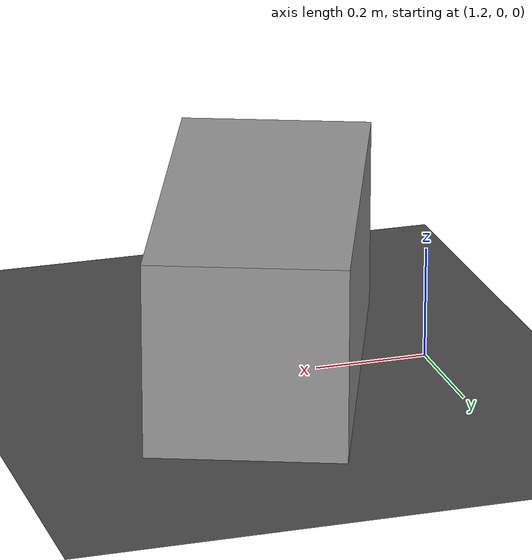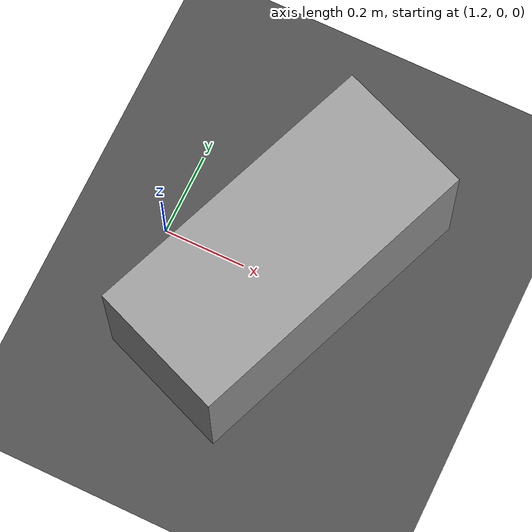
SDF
<sdf version="1.4">
  <world name="default">
    <scene>
      <shadows>0</shadows>
    </scene>
    <include>
      <uri>model://sun</uri>
    </include>
    <model name='ground_plane'>
      <static>1</static>
      <link name='link'>
        <collision name='collision'>
          <geometry>
            <plane>
              <normal>0 0 1</normal>
              <size>100 100</size>
            </plane>
          </geometry>
          <surface>
            <friction>
              <ode>
                <mu>100</mu>
                <mu2>50</mu2>
              </ode>
              <torsional>
                <ode/>
              </torsional>
            </friction>
            <contact>
              <ode/>
            </contact>
            <bounce/>
          </surface>
          <max_contacts>10</max_contacts>
        </collision>
        <visual name='visual'>
          <cast_shadows>0</cast_shadows>
          <geometry>
            <plane>
              <normal>0 0 1</normal>
              <size>100 100</size>
            </plane>
          </geometry>
          <material>
            <script>
              <uri>model://asphalt_plane/materials/scripts</uri>
              <uri>model://asphalt_plane/materials/textures</uri>
              <name>vrc/asphalt</name>
            </script>
          </material>
        </visual>
        <self_collide>0</self_collide>
        <kinematic>0</kinematic>
        <gravity>1</gravity>
      </link>
    </model>
    <model name='grey_block'>
      <link name='link'>
        <pose frame=''>0 0 0 0 0 0</pose>
        <inertial>
          <mass>0.5167</mass>
          <inertia>
            <ixx>0.000861167</ixx>
            <ixy>0</ixy>
            <ixz>0</ixz>
            <iyy>0.000861167</iyy>
            <iyz>0</iyz>
            <izz>0.000861167</izz>
          </inertia>
        </inertial>
        <collision name='collision'>
          <geometry>
            <box>
              <size>0.75 0.34 0.34</size>
            </box>
          </geometry>
          <surface>
            <contact>
              <poissons_ratio>0.347</poissons_ratio>
              <elastic_modulus>8.8e+09</elastic_modulus>
              <ode>
                <kp>100000</kp>
                <kd>100</kd>
                <max_vel>100</max_vel>
                <min_depth>0.001</min_depth>
              </ode>
            </contact>
            <friction>
              <torsional>
                <coefficient>1</coefficient>
                <use_patch_radius>0</use_patch_radius>
                <surface_radius>0.01</surface_radius>
                <ode/>
              </torsional>
              <ode/>
            </friction>
            <bounce/>
          </surface>
          <max_contacts>10</max_contacts>
        </collision>
        <visual name='visual'>
          <geometry>
            <box>
              <size>0.75 0.34 0.34</size>
            </box>
          </geometry>
          <material>
            <script>
              <uri>file://media/materials/scripts/gazebo.material</uri>
              <name>Gazebo/Grey</name>
            </script>
          </material>
        </visual>
        <self_collide>0</self_collide>
        <kinematic>0</kinematic>
        <gravity>1</gravity>
      </link>
      <pose frame=''>1.5 0 0.17 0 0 1.2</pose>
    </model>

    <gui fullscreen='0'>
      <camera name='user_camera'>
        <pose frame=''>-3.34378 -4.33587 3.19902 0 0.462 0.752</pose>
        <view_controller>orbit</view_controller>
        <projection_type>perspective</projection_type>
      </camera>
    </gui>
  </world>
</sdf>
